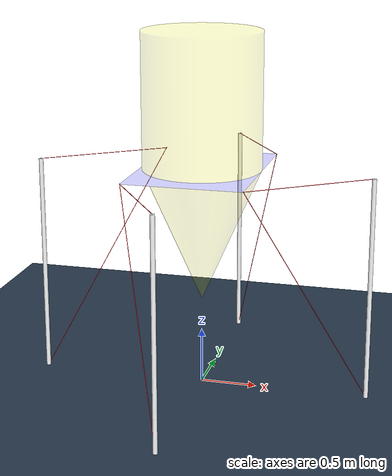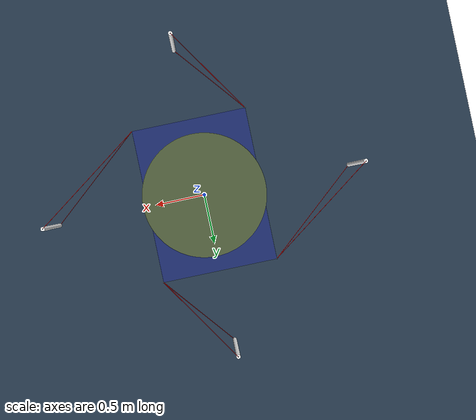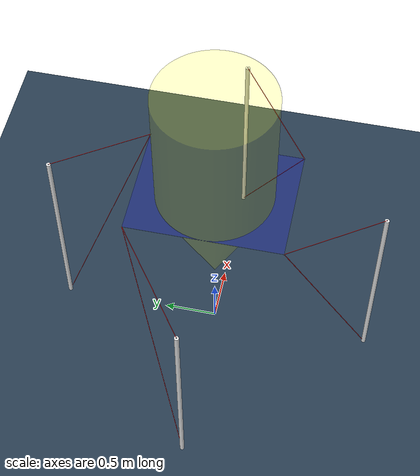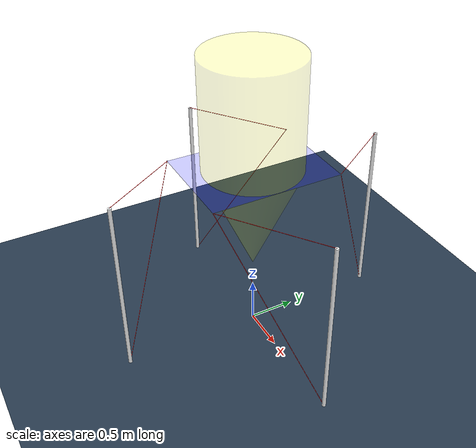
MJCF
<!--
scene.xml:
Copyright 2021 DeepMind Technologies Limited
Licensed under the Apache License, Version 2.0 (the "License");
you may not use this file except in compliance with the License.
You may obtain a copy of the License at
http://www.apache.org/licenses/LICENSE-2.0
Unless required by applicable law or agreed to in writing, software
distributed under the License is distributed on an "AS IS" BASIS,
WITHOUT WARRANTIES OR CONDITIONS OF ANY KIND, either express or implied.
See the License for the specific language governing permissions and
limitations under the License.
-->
<?xml version="1.0" encoding="UTF-8"?>
<mujoco model="cdpr">
    <compiler coordinate="global"/>
    <include file="scene.xml"/>
    <default>
        <default class="pole">
            <geom type="cylinder" size="0.02" rgba="1 1 1 1"/>
            <site type="sphere" rgba=".9 .9 .9 1" size="0.005"/>
        </default>
    </default>
    <asset>
        <mesh name="lightcone" file="lightcone.stl"/>
    </asset>

    <worldbody>
        <light pos="0 1 1" dir="0 -1 -1" diffuse="1 1 1"/>

        <!-- 3 by 3 square, 2 tall -->
        <body name="frame">
            <geom class="pole" name="pole_west"  fromto="-1.5 0 0  -1.5 0 2"/>
            <site name="Wt" pos="-1.5 0 2"/>
            <site name="Wb" pos="-1.5 0 0"/>

            <geom class="pole" name="pole_east"  fromto="+1.5 0 0  +1.5 0 2"/>
            <site name="Et" pos="+1.5 0 2"/>
            <site name="Eb" pos="+1.5 0 0"/>

            <geom class="pole" name="pole_south" fromto="0 -1.5 0  0 -1.5 2"/>
            <site name="St" pos="0 -1.5 2"/>
            <site name="Sb" pos="0 -1.5 0"/>

            <geom class="pole" name="pole_north" fromto="0 +1.5 0  0 +1.5 2"/>
            <site name="Nt" pos="0 +1.5 2"/>
            <site name="Nb" pos="0 +1.5 0"/>
        </body>

        <body name="lens">
            <freejoint name="root"/>

            <!-- 1.4/2=0.7 1.05/2=0.525 meters -->
            <!-- mass="3.5" kg -->
            <geom mass="3.5" name="lens" type="box" size="0.525 0.7 0.002" rgba="0 0 1 0.2" pos="0 0 2"/>
            <site name="W" pos="-0.525 +0.7 2"/>
            <site name="E" pos="+0.525 -0.7 2"/>
            <site name="S" pos="-0.525 -0.7 2"/>
            <site name="N" pos="+0.525 +0.7 2"/>

            <!-- distance from ground:2 - cone height:1.2 = 0.8 -->
            <geom mass="0" name="lightrays" rgba="1 1 0 0.1" type="mesh" pos="0 0 0.8" mesh="lightcone"/>
        </body>
    </worldbody>

    <tendon>
        <spatial name="Wt" width="0.002" rgba="1 0 0 1" limited="true" range="0 0.33">
            <site site="Wt"/>
            <site site="W"/>
        </spatial>
        <spatial name="Wb" width="0.002" rgba="1 0 0 1" limited="true" range="0 0.33">
            <site site="Wb"/>
            <site site="W"/>
        </spatial>

        <spatial name="Et" width="0.002" rgba="1 0 0 1" limited="true" range="0 0.33">
            <site site="Et"/>
            <site site="E"/>
        </spatial>
        <spatial name="Eb" width="0.002" rgba="1 0 0 1" limited="true" range="0 0.33">
            <site site="Eb"/>
            <site site="E"/>
        </spatial>

        <spatial name="St" width="0.002" rgba="1 0 0 1" limited="true" range="0 0.33">
            <site site="St"/>
            <site site="S"/>
        </spatial>
        <spatial name="Sb" width="0.002" rgba="1 0 0 1" limited="true" range="0 0.33">
            <site site="Sb"/>
            <site site="S"/>
        </spatial>

        <spatial name="Nt" width="0.002" rgba="1 0 0 1" limited="true" range="0 0.33">
            <site site="Nt"/>
            <site site="N"/>
        </spatial>
        <spatial name="Nb" width="0.002" rgba="1 0 0 1" limited="true" range="0 0.33">
            <site site="Nb"/>
            <site site="N"/>
        </spatial>
    </tendon>

    <actuator>
        <motor name="Wt" tendon="Wt" gear="100000"/>
        <motor name="Wb" tendon="Wb" gear="100000"/>
        <motor name="Et" tendon="Et" gear="100000"/>
        <motor name="Eb" tendon="Eb" gear="100000"/>
        <motor name="St" tendon="St" gear="100000"/>
        <motor name="Sb" tendon="Sb" gear="100000"/>
        <motor name="Nt" tendon="Nt" gear="100000"/>
        <motor name="Nb" tendon="Nb" gear="100000"/>

        <!-- https://github.com/deepmind/mujoco/discussions/74 -->

        <!-- https://github.com/deepmind/mujoco/issues/84#issuecomment-986054248 -->
        <!-- https://roboti.us/forum/index.php?threads/simple-position-servo.3389/ -->
    </actuator>
</mujoco>

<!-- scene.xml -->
<mujoco>

    <statistic extent="2" meansize=".05"/>

    <option timestep="0.005" solver="Newton" iterations="30" tolerance="1e-10" jacobian="sparse" cone="pyramidal"/>

    <visual>
        <rgba haze="0.15 0.25 0.35 1"/>
        <quality shadowsize="2048"/>
        <map stiffness="700" shadowscale="0.5" fogstart="10" fogend="15" zfar="40" haze="0.3"/>
    </visual>

    <asset>
        <texture type="skybox" builtin="gradient" rgb1="0.3 0.5 0.7" rgb2="0 0 0" width="512" height="512"/>
        <texture name="texplane" type="2d" builtin="checker" rgb1=".2 .3 .4" rgb2=".1 0.15 0.2"
            width="512" height="512" mark="cross" markrgb=".8 .8 .8"/>

        <material name="matplane" reflectance="0.3" texture="texplane" texrepeat="1 1" texuniform="true"/>
    </asset>

    <worldbody>
        <light directional="true" diffuse=".4 .4 .4" specular="0.1 0.1 0.1" pos="0 0 5.0" dir="0 0 -1" castshadow="false"/>
        <light directional="true" diffuse=".6 .6 .6" specular="0.2 0.2 0.2" pos="0 0 4" dir="0 0 -1"/>

        <geom name="ground" type="plane" size="0 0 1" pos="0 0 0" quat="1 0 0 0" material="matplane" condim="1"/>

    </worldbody>
</mujoco>
